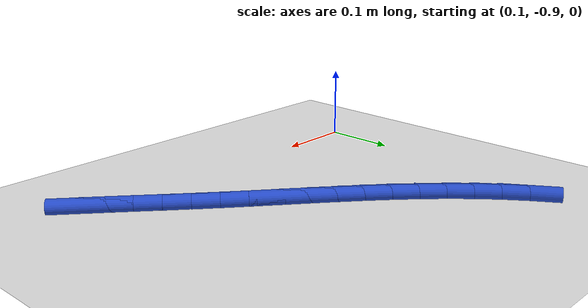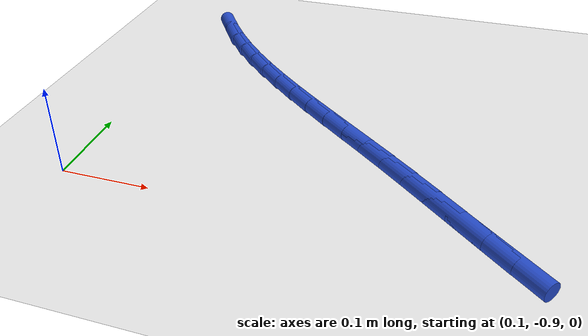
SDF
<sdf version="1.6">
 <world name="default">
  <model name="ground_plane">
   <static>1</static>
   <link name="link">
    <collision name="collision">
     <geometry><plane><normal>0 0 1</normal><size>100 100</size></plane></geometry>
     <surface><friction><ode><mu>100</mu><mu2>50</mu2></ode></friction></surface>
    </collision>
    <visual name="visual">
     <cast_shadows>0</cast_shadows>
     <geometry><plane><normal>0 0 1</normal><size>100 100</size></plane></geometry>
     <material>
      <script><uri>file://media/materials/scripts/gazebo.material</uri><name>Gazebo/WhiteGlow</name></script>
     </material>
    </visual>
   </link>
  </model>
  <model name="line">
   <link name="link_178">
    <pose>0.5579386273150244 -0.911002831647496 0.01 0 1.57 -0.7119412649915553</pose>
    <collision name="collision">
     <geometry><cylinder><radius>0.01</radius><length>0.08</length></cylinder></geometry>
    </collision>
    <visual name="visual">
     <material>
      <script><name>Gazebo/Blue</name><uri>file://media/materials/scripts/gazebo.material</uri></script>
     </material>
     <geometry><cylinder><radius>0.01</radius><length>0.08</length></cylinder></geometry>
    </visual>
   </link>
   <link name="link_179">
    <pose>0.5316287723934586 -0.8882998009908138 0.01 0 1.57 -0.7190136308200421</pose>
    <collision name="collision">
     <geometry><cylinder><radius>0.01</radius><length>0.08</length></cylinder></geometry>
    </collision>
    <visual name="visual">
     <material>
      <script><name>Gazebo/Blue</name><uri>file://media/materials/scripts/gazebo.material</uri></script>
     </material>
     <geometry><cylinder><radius>0.01</radius><length>0.08</length></cylinder></geometry>
    </visual>
   </link>
   <link name="link_180">
    <pose>0.505514645626126 -0.8654414718863374 0.01 0 1.57 -0.7207682131604182</pose>
    <collision name="collision">
     <geometry><cylinder><radius>0.01</radius><length>0.08</length></cylinder></geometry>
    </collision>
    <visual name="visual">
     <material>
      <script><name>Gazebo/Blue</name><uri>file://media/materials/scripts/gazebo.material</uri></script>
     </material>
     <geometry><cylinder><radius>0.01</radius><length>0.08</length></cylinder></geometry>
    </visual>
   </link>
   <link name="link_181">
    <pose>0.47944487985998896 -0.8425410603042987 0.01 0 1.57 -0.7171963405329536</pose>
    <collision name="collision">
     <geometry><cylinder><radius>0.01</radius><length>0.08</length></cylinder></geometry>
    </collision>
    <visual name="visual">
     <material>
      <script><name>Gazebo/Blue</name><uri>file://media/materials/scripts/gazebo.material</uri></script>
     </material>
     <geometry><cylinder><radius>0.01</radius><length>0.08</length></cylinder></geometry>
    </visual>
   </link>
   <link name="link_182">
    <pose>0.45326810794200934 -0.8197117822149306 0.01 0 1.57 -0.7083259721344093</pose>
    <collision name="collision">
     <geometry><cylinder><radius>0.01</radius><length>0.08</length></cylinder></geometry>
    </collision>
    <visual name="visual">
     <material>
      <script><name>Gazebo/Blue</name><uri>file://media/materials/scripts/gazebo.material</uri></script>
     </material>
     <geometry><cylinder><radius>0.01</radius><length>0.08</length></cylinder></geometry>
    </visual>
   </link>
   <link name="link_183">
    <pose>0.4268329627191488 -0.7970668535884653 0.01 0 1.57 -0.6956794658915019</pose>
    <collision name="collision">
     <geometry><cylinder><radius>0.01</radius><length>0.08</length></cylinder></geometry>
    </collision>
    <visual name="visual">
     <material>
      <script><name>Gazebo/Blue</name><uri>file://media/materials/scripts/gazebo.material</uri></script>
     </material>
     <geometry><cylinder><radius>0.01</radius><length>0.08</length></cylinder></geometry>
    </visual>
   </link>
   <link name="link_184">
    <pose>0.4000284522001035 -0.7746869802590968 0.01 0 1.57 -0.6875492435455096</pose>
    <collision name="collision">
     <geometry><cylinder><radius>0.01</radius><length>0.08</length></cylinder></geometry>
    </collision>
    <visual name="visual">
     <material>
      <script><name>Gazebo/Blue</name><uri>file://media/materials/scripts/gazebo.material</uri></script>
     </material>
     <geometry><cylinder><radius>0.01</radius><length>0.08</length></cylinder></geometry>
    </visual>
   </link>
   <link name="link_185">
    <pose>0.37297284969302347 -0.7524682633249735 0.01 0 1.57 -0.6867802056714198</pose>
    <collision name="collision">
     <geometry><cylinder><radius>0.01</radius><length>0.08</length></cylinder></geometry>
    </collision>
    <visual name="visual">
     <material>
      <script><name>Gazebo/Blue</name><uri>file://media/materials/scripts/gazebo.material</uri></script>
     </material>
     <geometry><cylinder><radius>0.01</radius><length>0.08</length></cylinder></geometry>
    </visual>
   </link>
   <link name="link_186">
    <pose>0.3458652483156527 -0.7302417276618396 0.01 0 1.57 -0.6933442193112163</pose>
    <collision name="collision">
     <geometry><cylinder><radius>0.01</radius><length>0.08</length></cylinder></geometry>
    </collision>
    <visual name="visual">
     <material>
      <script><name>Gazebo/Blue</name><uri>file://media/materials/scripts/gazebo.material</uri></script>
     </material>
     <geometry><cylinder><radius>0.01</radius><length>0.08</length></cylinder></geometry>
    </visual>
   </link>
   <link name="link_187">
    <pose>0.3189048321299737 -0.7078383249170123 0.01 0 1.57 -0.7072661051367197</pose>
    <collision name="collision">
     <geometry><cylinder><radius>0.01</radius><length>0.08</length></cylinder></geometry>
    </collision>
    <visual name="visual">
     <material>
      <script><name>Gazebo/Blue</name><uri>file://media/materials/scripts/gazebo.material</uri></script>
     </material>
     <geometry><cylinder><radius>0.01</radius><length>0.08</length></cylinder></geometry>
    </visual>
   </link>
   <link name="link_188">
    <pose>0.29229078519796886 -0.6850890067378095 0.01 0 1.57 -0.7286164958597234</pose>
    <collision name="collision">
     <geometry><cylinder><radius>0.01</radius><length>0.08</length></cylinder></geometry>
    </collision>
    <visual name="visual">
     <material>
      <script><name>Gazebo/Blue</name><uri>file://media/materials/scripts/gazebo.material</uri></script>
     </material>
     <geometry><cylinder><radius>0.01</radius><length>0.08</length></cylinder></geometry>
    </visual>
   </link>
   <link name="link_189">
    <pose>0.26622229158161986 -0.661824724771548 0.01 0 1.57 -0.757489744771214</pose>
    <collision name="collision">
     <geometry><cylinder><radius>0.01</radius><length>0.08</length></cylinder></geometry>
    </collision>
    <visual name="visual">
     <material>
      <script><name>Gazebo/Blue</name><uri>file://media/materials/scripts/gazebo.material</uri></script>
     </material>
     <geometry><cylinder><radius>0.01</radius><length>0.08</length></cylinder></geometry>
    </visual>
   </link>
   <link name="link_190">
    <pose>0.2408985353429101 -0.6378764306655463 0.01 0 1.57 -0.7939687059900352</pose>
    <collision name="collision">
     <geometry><cylinder><radius>0.01</radius><length>0.08</length></cylinder></geometry>
    </collision>
    <visual name="visual">
     <material>
      <script><name>Gazebo/Blue</name><uri>file://media/materials/scripts/gazebo.material</uri></script>
     </material>
     <geometry><cylinder><radius>0.01</radius><length>0.08</length></cylinder></geometry>
    </visual>
   </link>
   <link name="link_191">
    <pose>0.21651870054382144 -0.6130750760671217 0.01 0 1.57 -0.838075108799839</pose>
    <collision name="collision">
     <geometry><cylinder><radius>0.01</radius><length>0.08</length></cylinder></geometry>
    </collision>
    <visual name="visual">
     <material>
      <script><name>Gazebo/Blue</name><uri>file://media/materials/scripts/gazebo.material</uri></script>
     </material>
     <geometry><cylinder><radius>0.01</radius><length>0.08</length></cylinder></geometry>
    </visual>
   </link>
   <link name="link_192">
    <pose>0.19328197124633612 -0.5872516126235915 0.01 0 1.57 -0.8897034823311024</pose>
    <collision name="collision">
     <geometry><cylinder><radius>0.01</radius><length>0.08</length></cylinder></geometry>
    </collision>
    <visual name="visual">
     <material>
      <script><name>Gazebo/Blue</name><uri>file://media/materials/scripts/gazebo.material</uri></script>
     </material>
     <geometry><cylinder><radius>0.01</radius><length>0.08</length></cylinder></geometry>
    </visual>
   </link>
   <link name="link_193">
    <pose>0.17138747971209542 -0.5602370668232188 0.01 0 1.57 -0.946143664472671</pose>
    <collision name="collision">
     <geometry><cylinder><radius>0.01</radius><length>0.08</length></cylinder></geometry>
    </collision>
    <visual name="visual">
     <material>
      <script><name>Gazebo/Blue</name><uri>file://media/materials/scripts/gazebo.material</uri></script>
     </material>
     <geometry><cylinder><radius>0.01</radius><length>0.08</length></cylinder></geometry>
    </visual>
   </link>
   <link name="link_194">
    <pose>0.15098355084889362 -0.5319358714351253 0.01 0 1.57 -1.000318346474881</pose>
    <collision name="collision">
     <geometry><cylinder><radius>0.01</radius><length>0.08</length></cylinder></geometry>
    </collision>
    <visual name="visual">
     <material>
      <script><name>Gazebo/Blue</name><uri>file://media/materials/scripts/gazebo.material</uri></script>
     </material>
     <geometry><cylinder><radius>0.01</radius><length>0.08</length></cylinder></geometry>
    </visual>
   </link>
  </model>
 </world>
</sdf>
